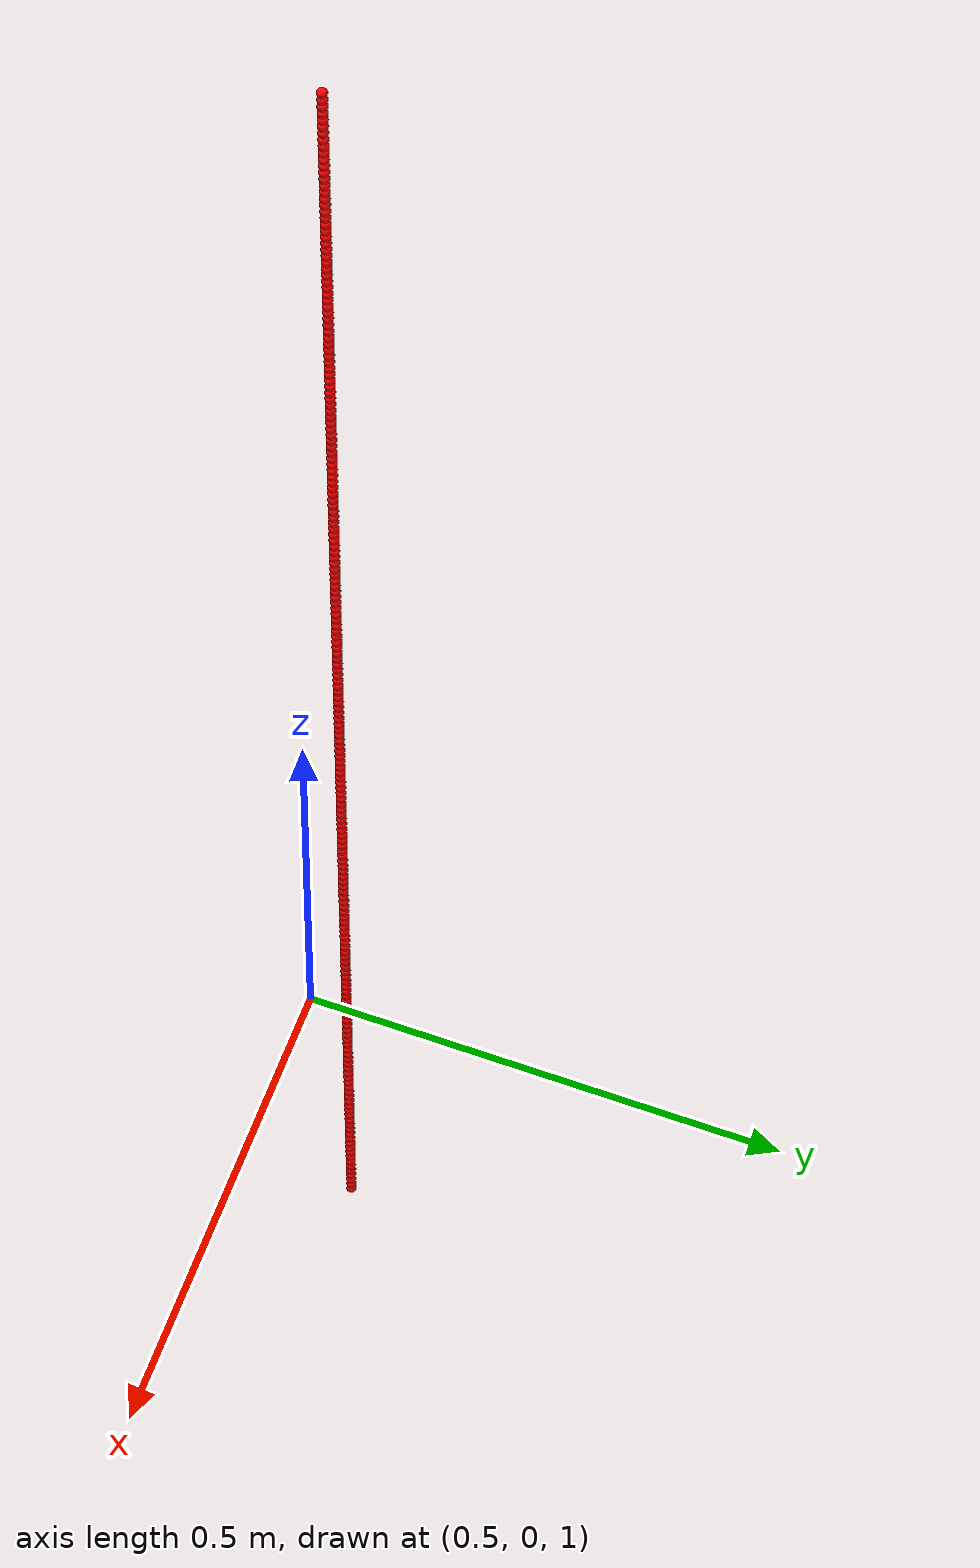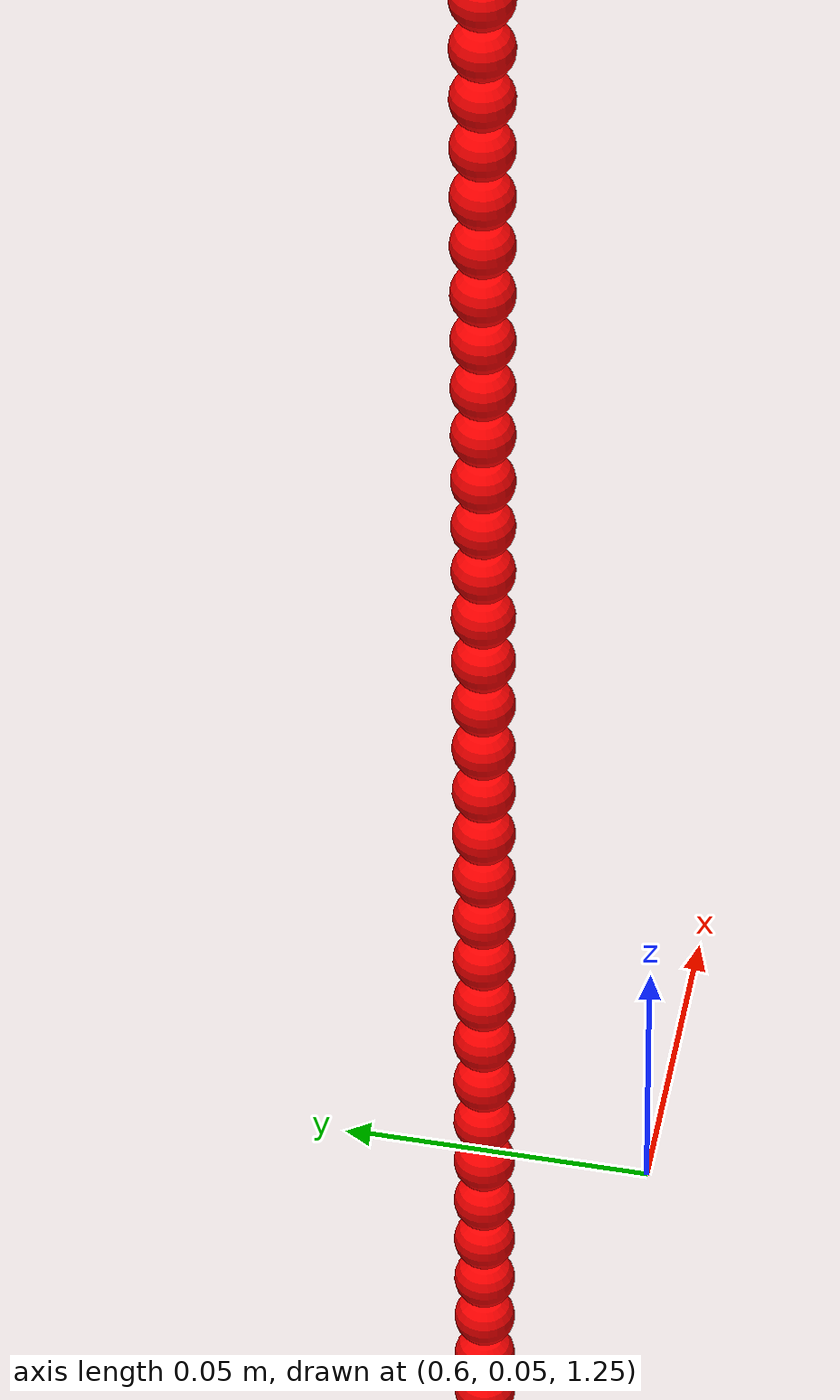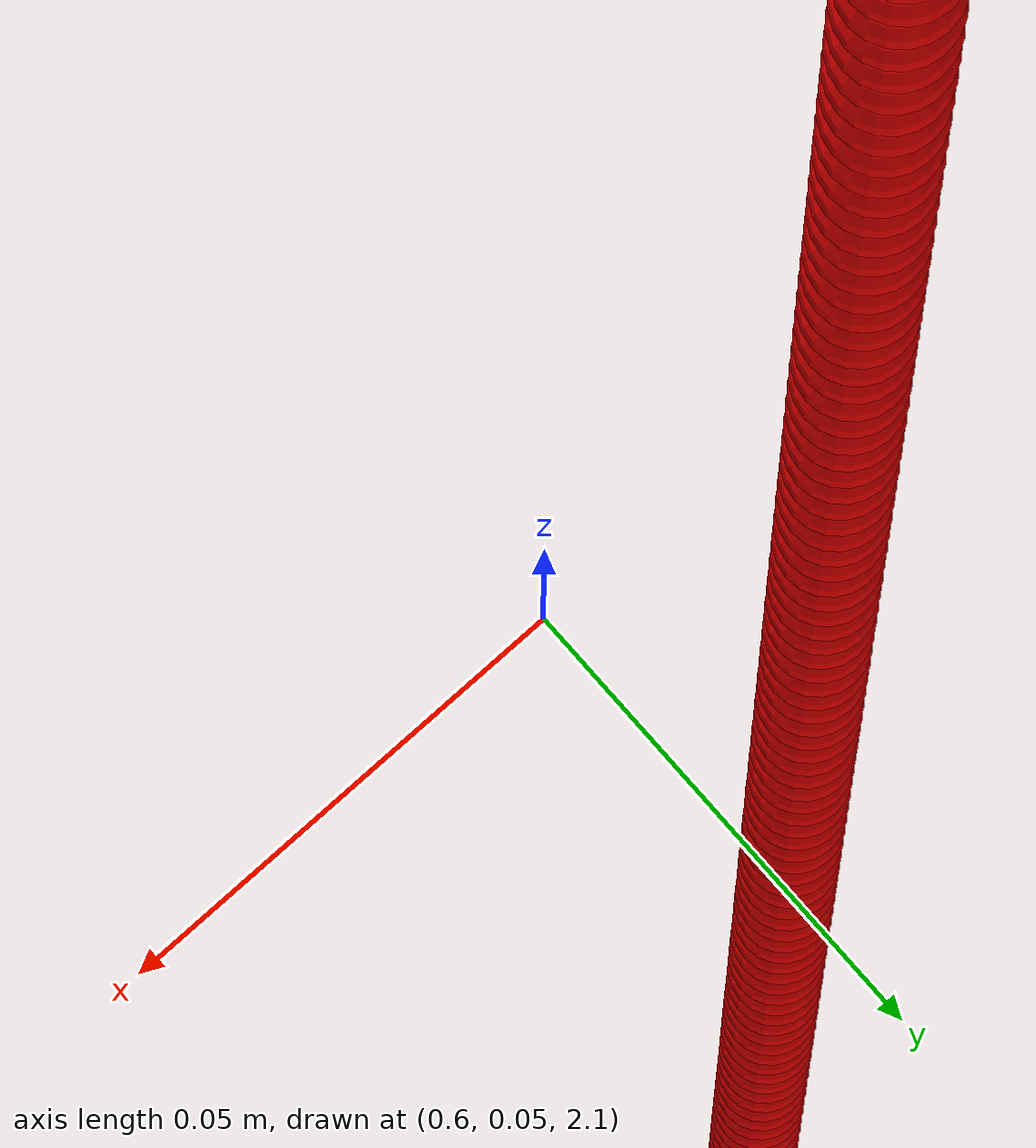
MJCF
<?xml version="1.0" ?>
<mujoco>
	<asset/>
	<worldbody>
		<body name="ball0" pos="0.59 0.075 0.8">
			<freejoint/>
			<geom type="sphere" size="0.005" rgba="1 0 0 1"/>
		</body>
		<body name="ball1" pos="0.59 0.075 0.81">
			<freejoint/>
			<geom type="sphere" size="0.005" rgba="1 0 0 1"/>
		</body>
		<body name="ball2" pos="0.59 0.075 0.8200000000000001">
			<freejoint/>
			<geom type="sphere" size="0.005" rgba="1 0 0 1"/>
		</body>
		<body name="ball3" pos="0.59 0.075 0.8300000000000001">
			<freejoint/>
			<geom type="sphere" size="0.005" rgba="1 0 0 1"/>
		</body>
		<body name="ball4" pos="0.59 0.075 0.8400000000000001">
			<freejoint/>
			<geom type="sphere" size="0.005" rgba="1 0 0 1"/>
		</body>
		<body name="ball5" pos="0.59 0.075 0.8500000000000001">
			<freejoint/>
			<geom type="sphere" size="0.005" rgba="1 0 0 1"/>
		</body>
		<body name="ball6" pos="0.59 0.075 0.8600000000000001">
			<freejoint/>
			<geom type="sphere" size="0.005" rgba="1 0 0 1"/>
		</body>
		<body name="ball7" pos="0.59 0.075 0.8700000000000001">
			<freejoint/>
			<geom type="sphere" size="0.005" rgba="1 0 0 1"/>
		</body>
		<body name="ball8" pos="0.59 0.075 0.88">
			<freejoint/>
			<geom type="sphere" size="0.005" rgba="1 0 0 1"/>
		</body>
		<body name="ball9" pos="0.59 0.075 0.89">
			<freejoint/>
			<geom type="sphere" size="0.005" rgba="1 0 0 1"/>
		</body>
		<body name="ball10" pos="0.59 0.075 0.9">
			<freejoint/>
			<geom type="sphere" size="0.005" rgba="1 0 0 1"/>
		</body>
		<body name="ball11" pos="0.59 0.075 0.91">
			<freejoint/>
			<geom type="sphere" size="0.005" rgba="1 0 0 1"/>
		</body>
		<body name="ball12" pos="0.59 0.075 0.92">
			<freejoint/>
			<geom type="sphere" size="0.005" rgba="1 0 0 1"/>
		</body>
		<body name="ball13" pos="0.59 0.075 0.93">
			<freejoint/>
			<geom type="sphere" size="0.005" rgba="1 0 0 1"/>
		</body>
		<body name="ball14" pos="0.59 0.075 0.9400000000000001">
			<freejoint/>
			<geom type="sphere" size="0.005" rgba="1 0 0 1"/>
		</body>
		<body name="ball15" pos="0.59 0.075 0.9500000000000001">
			<freejoint/>
			<geom type="sphere" size="0.005" rgba="1 0 0 1"/>
		</body>
		<body name="ball16" pos="0.59 0.075 0.9600000000000001">
			<freejoint/>
			<geom type="sphere" size="0.005" rgba="1 0 0 1"/>
		</body>
		<body name="ball17" pos="0.59 0.075 0.9700000000000001">
			<freejoint/>
			<geom type="sphere" size="0.005" rgba="1 0 0 1"/>
		</body>
		<body name="ball18" pos="0.59 0.075 0.98">
			<freejoint/>
			<geom type="sphere" size="0.005" rgba="1 0 0 1"/>
		</body>
		<body name="ball19" pos="0.59 0.075 0.99">
			<freejoint/>
			<geom type="sphere" size="0.005" rgba="1 0 0 1"/>
		</body>
		<body name="ball20" pos="0.59 0.075 1.0">
			<freejoint/>
			<geom type="sphere" size="0.005" rgba="1 0 0 1"/>
		</body>
		<body name="ball21" pos="0.59 0.075 1.01">
			<freejoint/>
			<geom type="sphere" size="0.005" rgba="1 0 0 1"/>
		</body>
		<body name="ball22" pos="0.59 0.075 1.02">
			<freejoint/>
			<geom type="sphere" size="0.005" rgba="1 0 0 1"/>
		</body>
		<body name="ball23" pos="0.59 0.075 1.03">
			<freejoint/>
			<geom type="sphere" size="0.005" rgba="1 0 0 1"/>
		</body>
		<body name="ball24" pos="0.59 0.075 1.04">
			<freejoint/>
			<geom type="sphere" size="0.005" rgba="1 0 0 1"/>
		</body>
		<body name="ball25" pos="0.59 0.075 1.05">
			<freejoint/>
			<geom type="sphere" size="0.005" rgba="1 0 0 1"/>
		</body>
		<body name="ball26" pos="0.59 0.075 1.06">
			<freejoint/>
			<geom type="sphere" size="0.005" rgba="1 0 0 1"/>
		</body>
		<body name="ball27" pos="0.59 0.075 1.07">
			<freejoint/>
			<geom type="sphere" size="0.005" rgba="1 0 0 1"/>
		</body>
		<body name="ball28" pos="0.59 0.075 1.08">
			<freejoint/>
			<geom type="sphere" size="0.005" rgba="1 0 0 1"/>
		</body>
		<body name="ball29" pos="0.59 0.075 1.09">
			<freejoint/>
			<geom type="sphere" size="0.005" rgba="1 0 0 1"/>
		</body>
		<body name="ball30" pos="0.59 0.075 1.1">
			<freejoint/>
			<geom type="sphere" size="0.005" rgba="1 0 0 1"/>
		</body>
		<body name="ball31" pos="0.59 0.075 1.11">
			<freejoint/>
			<geom type="sphere" size="0.005" rgba="1 0 0 1"/>
		</body>
		<body name="ball32" pos="0.59 0.075 1.12">
			<freejoint/>
			<geom type="sphere" size="0.005" rgba="1 0 0 1"/>
		</body>
		<body name="ball33" pos="0.59 0.075 1.1300000000000001">
			<freejoint/>
			<geom type="sphere" size="0.005" rgba="1 0 0 1"/>
		</body>
		<body name="ball34" pos="0.59 0.075 1.1400000000000001">
			<freejoint/>
			<geom type="sphere" size="0.005" rgba="1 0 0 1"/>
		</body>
		<body name="ball35" pos="0.59 0.075 1.1500000000000001">
			<freejoint/>
			<geom type="sphere" size="0.005" rgba="1 0 0 1"/>
		</body>
		<body name="ball36" pos="0.59 0.075 1.1600000000000001">
			<freejoint/>
			<geom type="sphere" size="0.005" rgba="1 0 0 1"/>
		</body>
		<body name="ball37" pos="0.59 0.075 1.17">
			<freejoint/>
			<geom type="sphere" size="0.005" rgba="1 0 0 1"/>
		</body>
		<body name="ball38" pos="0.59 0.075 1.1800000000000002">
			<freejoint/>
			<geom type="sphere" size="0.005" rgba="1 0 0 1"/>
		</body>
		<body name="ball39" pos="0.59 0.075 1.19">
			<freejoint/>
			<geom type="sphere" size="0.005" rgba="1 0 0 1"/>
		</body>
		<body name="ball40" pos="0.59 0.075 1.2000000000000002">
			<freejoint/>
			<geom type="sphere" size="0.005" rgba="1 0 0 1"/>
		</body>
		<body name="ball41" pos="0.59 0.075 1.21">
			<freejoint/>
			<geom type="sphere" size="0.005" rgba="1 0 0 1"/>
		</body>
		<body name="ball42" pos="0.59 0.075 1.22">
			<freejoint/>
			<geom type="sphere" size="0.005" rgba="1 0 0 1"/>
		</body>
		<body name="ball43" pos="0.59 0.075 1.23">
			<freejoint/>
			<geom type="sphere" size="0.005" rgba="1 0 0 1"/>
		</body>
		<body name="ball44" pos="0.59 0.075 1.24">
			<freejoint/>
			<geom type="sphere" size="0.005" rgba="1 0 0 1"/>
		</body>
		<body name="ball45" pos="0.59 0.075 1.25">
			<freejoint/>
			<geom type="sphere" size="0.005" rgba="1 0 0 1"/>
		</body>
		<body name="ball46" pos="0.59 0.075 1.26">
			<freejoint/>
			<geom type="sphere" size="0.005" rgba="1 0 0 1"/>
		</body>
		<body name="ball47" pos="0.59 0.075 1.27">
			<freejoint/>
			<geom type="sphere" size="0.005" rgba="1 0 0 1"/>
		</body>
		<body name="ball48" pos="0.59 0.075 1.28">
			<freejoint/>
			<geom type="sphere" size="0.005" rgba="1 0 0 1"/>
		</body>
		<body name="ball49" pos="0.59 0.075 1.29">
			<freejoint/>
			<geom type="sphere" size="0.005" rgba="1 0 0 1"/>
		</body>
		<body name="ball50" pos="0.59 0.075 1.3">
			<freejoint/>
			<geom type="sphere" size="0.005" rgba="1 0 0 1"/>
		</body>
		<body name="ball51" pos="0.59 0.075 1.31">
			<freejoint/>
			<geom type="sphere" size="0.005" rgba="1 0 0 1"/>
		</body>
		<body name="ball52" pos="0.59 0.075 1.32">
			<freejoint/>
			<geom type="sphere" size="0.005" rgba="1 0 0 1"/>
		</body>
		<body name="ball53" pos="0.59 0.075 1.33">
			<freejoint/>
			<geom type="sphere" size="0.005" rgba="1 0 0 1"/>
		</body>
		<body name="ball54" pos="0.59 0.075 1.34">
			<freejoint/>
			<geom type="sphere" size="0.005" rgba="1 0 0 1"/>
		</body>
		<body name="ball55" pos="0.59 0.075 1.35">
			<freejoint/>
			<geom type="sphere" size="0.005" rgba="1 0 0 1"/>
		</body>
		<body name="ball56" pos="0.59 0.075 1.36">
			<freejoint/>
			<geom type="sphere" size="0.005" rgba="1 0 0 1"/>
		</body>
		<body name="ball57" pos="0.59 0.075 1.37">
			<freejoint/>
			<geom type="sphere" size="0.005" rgba="1 0 0 1"/>
		</body>
		<body name="ball58" pos="0.59 0.075 1.38">
			<freejoint/>
			<geom type="sphere" size="0.005" rgba="1 0 0 1"/>
		</body>
		<body name="ball59" pos="0.59 0.075 1.3900000000000001">
			<freejoint/>
			<geom type="sphere" size="0.005" rgba="1 0 0 1"/>
		</body>
		<body name="ball60" pos="0.59 0.075 1.4">
			<freejoint/>
			<geom type="sphere" size="0.005" rgba="1 0 0 1"/>
		</body>
		<body name="ball61" pos="0.59 0.075 1.4100000000000001">
			<freejoint/>
			<geom type="sphere" size="0.005" rgba="1 0 0 1"/>
		</body>
		<body name="ball62" pos="0.59 0.075 1.42">
			<freejoint/>
			<geom type="sphere" size="0.005" rgba="1 0 0 1"/>
		</body>
		<body name="ball63" pos="0.59 0.075 1.4300000000000002">
			<freejoint/>
			<geom type="sphere" size="0.005" rgba="1 0 0 1"/>
		</body>
		<body name="ball64" pos="0.59 0.075 1.44">
			<freejoint/>
			<geom type="sphere" size="0.005" rgba="1 0 0 1"/>
		</body>
		<body name="ball65" pos="0.59 0.075 1.4500000000000002">
			<freejoint/>
			<geom type="sphere" size="0.005" rgba="1 0 0 1"/>
		</body>
		<body name="ball66" pos="0.59 0.075 1.46">
			<freejoint/>
			<geom type="sphere" size="0.005" rgba="1 0 0 1"/>
		</body>
		<body name="ball67" pos="0.59 0.075 1.4700000000000002">
			<freejoint/>
			<geom type="sphere" size="0.005" rgba="1 0 0 1"/>
		</body>
		<body name="ball68" pos="0.59 0.075 1.48">
			<freejoint/>
			<geom type="sphere" size="0.005" rgba="1 0 0 1"/>
		</body>
		<body name="ball69" pos="0.59 0.075 1.4900000000000002">
			<freejoint/>
			<geom type="sphere" size="0.005" rgba="1 0 0 1"/>
		</body>
		<body name="ball70" pos="0.59 0.075 1.5">
			<freejoint/>
			<geom type="sphere" size="0.005" rgba="1 0 0 1"/>
		</body>
		<body name="ball71" pos="0.59 0.075 1.51">
			<freejoint/>
			<geom type="sphere" size="0.005" rgba="1 0 0 1"/>
		</body>
		<body name="ball72" pos="0.59 0.075 1.52">
			<freejoint/>
			<geom type="sphere" size="0.005" rgba="1 0 0 1"/>
		</body>
		<body name="ball73" pos="0.59 0.075 1.53">
			<freejoint/>
			<geom type="sphere" size="0.005" rgba="1 0 0 1"/>
		</body>
		<body name="ball74" pos="0.59 0.075 1.54">
			<freejoint/>
			<geom type="sphere" size="0.005" rgba="1 0 0 1"/>
		</body>
		<body name="ball75" pos="0.59 0.075 1.55">
			<freejoint/>
			<geom type="sphere" size="0.005" rgba="1 0 0 1"/>
		</body>
		<body name="ball76" pos="0.59 0.075 1.56">
			<freejoint/>
			<geom type="sphere" size="0.005" rgba="1 0 0 1"/>
		</body>
		<body name="ball77" pos="0.59 0.075 1.57">
			<freejoint/>
			<geom type="sphere" size="0.005" rgba="1 0 0 1"/>
		</body>
		<body name="ball78" pos="0.59 0.075 1.58">
			<freejoint/>
			<geom type="sphere" size="0.005" rgba="1 0 0 1"/>
		</body>
		<body name="ball79" pos="0.59 0.075 1.59">
			<freejoint/>
			<geom type="sphere" size="0.005" rgba="1 0 0 1"/>
		</body>
		<body name="ball80" pos="0.59 0.075 1.6">
			<freejoint/>
			<geom type="sphere" size="0.005" rgba="1 0 0 1"/>
		</body>
		<body name="ball81" pos="0.59 0.075 1.61">
			<freejoint/>
			<geom type="sphere" size="0.005" rgba="1 0 0 1"/>
		</body>
		<body name="ball82" pos="0.59 0.075 1.62">
			<freejoint/>
			<geom type="sphere" size="0.005" rgba="1 0 0 1"/>
		</body>
		<body name="ball83" pos="0.59 0.075 1.6300000000000001">
			<freejoint/>
			<geom type="sphere" size="0.005" rgba="1 0 0 1"/>
		</body>
		<body name="ball84" pos="0.59 0.075 1.6400000000000001">
			<freejoint/>
			<geom type="sphere" size="0.005" rgba="1 0 0 1"/>
		</body>
		<body name="ball85" pos="0.59 0.075 1.65">
			<freejoint/>
			<geom type="sphere" size="0.005" rgba="1 0 0 1"/>
		</body>
		<body name="ball86" pos="0.59 0.075 1.6600000000000001">
			<freejoint/>
			<geom type="sphere" size="0.005" rgba="1 0 0 1"/>
		</body>
		<body name="ball87" pos="0.59 0.075 1.67">
			<freejoint/>
			<geom type="sphere" size="0.005" rgba="1 0 0 1"/>
		</body>
		<body name="ball88" pos="0.59 0.075 1.6800000000000002">
			<freejoint/>
			<geom type="sphere" size="0.005" rgba="1 0 0 1"/>
		</body>
		<body name="ball89" pos="0.59 0.075 1.69">
			<freejoint/>
			<geom type="sphere" size="0.005" rgba="1 0 0 1"/>
		</body>
		<body name="ball90" pos="0.59 0.075 1.7000000000000002">
			<freejoint/>
			<geom type="sphere" size="0.005" rgba="1 0 0 1"/>
		</body>
		<body name="ball91" pos="0.59 0.075 1.71">
			<freejoint/>
			<geom type="sphere" size="0.005" rgba="1 0 0 1"/>
		</body>
		<body name="ball92" pos="0.59 0.075 1.7200000000000002">
			<freejoint/>
			<geom type="sphere" size="0.005" rgba="1 0 0 1"/>
		</body>
		<body name="ball93" pos="0.59 0.075 1.73">
			<freejoint/>
			<geom type="sphere" size="0.005" rgba="1 0 0 1"/>
		</body>
		<body name="ball94" pos="0.59 0.075 1.7400000000000002">
			<freejoint/>
			<geom type="sphere" size="0.005" rgba="1 0 0 1"/>
		</body>
		<body name="ball95" pos="0.59 0.075 1.75">
			<freejoint/>
			<geom type="sphere" size="0.005" rgba="1 0 0 1"/>
		</body>
		<body name="ball96" pos="0.59 0.075 1.76">
			<freejoint/>
			<geom type="sphere" size="0.005" rgba="1 0 0 1"/>
		</body>
		<body name="ball97" pos="0.59 0.075 1.77">
			<freejoint/>
			<geom type="sphere" size="0.005" rgba="1 0 0 1"/>
		</body>
		<body name="ball98" pos="0.59 0.075 1.78">
			<freejoint/>
			<geom type="sphere" size="0.005" rgba="1 0 0 1"/>
		</body>
		<body name="ball99" pos="0.59 0.075 1.79">
			<freejoint/>
			<geom type="sphere" size="0.005" rgba="1 0 0 1"/>
		</body>
		<body name="ball100" pos="0.59 0.075 1.8">
			<freejoint/>
			<geom type="sphere" size="0.005" rgba="1 0 0 1"/>
		</body>
		<body name="ball101" pos="0.59 0.075 1.81">
			<freejoint/>
			<geom type="sphere" size="0.005" rgba="1 0 0 1"/>
		</body>
		<body name="ball102" pos="0.59 0.075 1.82">
			<freejoint/>
			<geom type="sphere" size="0.005" rgba="1 0 0 1"/>
		</body>
		<body name="ball103" pos="0.59 0.075 1.83">
			<freejoint/>
			<geom type="sphere" size="0.005" rgba="1 0 0 1"/>
		</body>
		<body name="ball104" pos="0.59 0.075 1.84">
			<freejoint/>
			<geom type="sphere" size="0.005" rgba="1 0 0 1"/>
		</body>
		<body name="ball105" pos="0.59 0.075 1.85">
			<freejoint/>
			<geom type="sphere" size="0.005" rgba="1 0 0 1"/>
		</body>
		<body name="ball106" pos="0.59 0.075 1.86">
			<freejoint/>
			<geom type="sphere" size="0.005" rgba="1 0 0 1"/>
		</body>
		<body name="ball107" pos="0.59 0.075 1.87">
			<freejoint/>
			<geom type="sphere" size="0.005" rgba="1 0 0 1"/>
		</body>
		<body name="ball108" pos="0.59 0.075 1.8800000000000001">
			<freejoint/>
			<geom type="sphere" size="0.005" rgba="1 0 0 1"/>
		</body>
		<body name="ball109" pos="0.59 0.075 1.8900000000000001">
			<freejoint/>
			<geom type="sphere" size="0.005" rgba="1 0 0 1"/>
		</body>
		<body name="ball110" pos="0.59 0.075 1.9000000000000001">
			<freejoint/>
			<geom type="sphere" size="0.005" rgba="1 0 0 1"/>
		</body>
		<body name="ball111" pos="0.59 0.075 1.9100000000000001">
			<freejoint/>
			<geom type="sphere" size="0.005" rgba="1 0 0 1"/>
		</body>
		<body name="ball112" pos="0.59 0.075 1.9200000000000002">
			<freejoint/>
			<geom type="sphere" size="0.005" rgba="1 0 0 1"/>
		</body>
		<body name="ball113" pos="0.59 0.075 1.9300000000000002">
			<freejoint/>
			<geom type="sphere" size="0.005" rgba="1 0 0 1"/>
		</body>
		<body name="ball114" pos="0.59 0.075 1.9400000000000002">
			<freejoint/>
			<geom type="sphere" size="0.005" rgba="1 0 0 1"/>
		</body>
		<body name="ball115" pos="0.59 0.075 1.9500000000000002">
			<freejoint/>
			<geom type="sphere" size="0.005" rgba="1 0 0 1"/>
		</body>
		<body name="ball116" pos="0.59 0.075 1.96">
			<freejoint/>
			<geom type="sphere" size="0.005" rgba="1 0 0 1"/>
		</body>
		<body name="ball117" pos="0.59 0.075 1.97">
			<freejoint/>
			<geom type="sphere" size="0.005" rgba="1 0 0 1"/>
		</body>
		<body name="ball118" pos="0.59 0.075 1.98">
			<freejoint/>
			<geom type="sphere" size="0.005" rgba="1 0 0 1"/>
		</body>
		<body name="ball119" pos="0.59 0.075 1.99">
			<freejoint/>
			<geom type="sphere" size="0.005" rgba="1 0 0 1"/>
		</body>
		<body name="ball120" pos="0.59 0.075 2.0">
			<freejoint/>
			<geom type="sphere" size="0.005" rgba="1 0 0 1"/>
		</body>
		<body name="ball121" pos="0.59 0.075 2.01">
			<freejoint/>
			<geom type="sphere" size="0.005" rgba="1 0 0 1"/>
		</body>
		<body name="ball122" pos="0.59 0.075 2.02">
			<freejoint/>
			<geom type="sphere" size="0.005" rgba="1 0 0 1"/>
		</body>
		<body name="ball123" pos="0.59 0.075 2.0300000000000002">
			<freejoint/>
			<geom type="sphere" size="0.005" rgba="1 0 0 1"/>
		</body>
		<body name="ball124" pos="0.59 0.075 2.04">
			<freejoint/>
			<geom type="sphere" size="0.005" rgba="1 0 0 1"/>
		</body>
		<body name="ball125" pos="0.59 0.075 2.05">
			<freejoint/>
			<geom type="sphere" size="0.005" rgba="1 0 0 1"/>
		</body>
		<body name="ball126" pos="0.59 0.075 2.06">
			<freejoint/>
			<geom type="sphere" size="0.005" rgba="1 0 0 1"/>
		</body>
		<body name="ball127" pos="0.59 0.075 2.0700000000000003">
			<freejoint/>
			<geom type="sphere" size="0.005" rgba="1 0 0 1"/>
		</body>
		<body name="ball128" pos="0.59 0.075 2.08">
			<freejoint/>
			<geom type="sphere" size="0.005" rgba="1 0 0 1"/>
		</body>
		<body name="ball129" pos="0.59 0.075 2.09">
			<freejoint/>
			<geom type="sphere" size="0.005" rgba="1 0 0 1"/>
		</body>
		<body name="ball130" pos="0.59 0.075 2.1">
			<freejoint/>
			<geom type="sphere" size="0.005" rgba="1 0 0 1"/>
		</body>
		<body name="ball131" pos="0.59 0.075 2.1100000000000003">
			<freejoint/>
			<geom type="sphere" size="0.005" rgba="1 0 0 1"/>
		</body>
		<body name="ball132" pos="0.59 0.075 2.12">
			<freejoint/>
			<geom type="sphere" size="0.005" rgba="1 0 0 1"/>
		</body>
		<body name="ball133" pos="0.59 0.075 2.13">
			<freejoint/>
			<geom type="sphere" size="0.005" rgba="1 0 0 1"/>
		</body>
		<body name="ball134" pos="0.59 0.075 2.14">
			<freejoint/>
			<geom type="sphere" size="0.005" rgba="1 0 0 1"/>
		</body>
		<body name="ball135" pos="0.59 0.075 2.1500000000000004">
			<freejoint/>
			<geom type="sphere" size="0.005" rgba="1 0 0 1"/>
		</body>
		<body name="ball136" pos="0.59 0.075 2.16">
			<freejoint/>
			<geom type="sphere" size="0.005" rgba="1 0 0 1"/>
		</body>
		<body name="ball137" pos="0.59 0.075 2.17">
			<freejoint/>
			<geom type="sphere" size="0.005" rgba="1 0 0 1"/>
		</body>
		<body name="ball138" pos="0.59 0.075 2.18">
			<freejoint/>
			<geom type="sphere" size="0.005" rgba="1 0 0 1"/>
		</body>
		<body name="ball139" pos="0.59 0.075 2.1900000000000004">
			<freejoint/>
			<geom type="sphere" size="0.005" rgba="1 0 0 1"/>
		</body>
		<body name="ball140" pos="0.59 0.075 2.2">
			<freejoint/>
			<geom type="sphere" size="0.005" rgba="1 0 0 1"/>
		</body>
		<body name="ball141" pos="0.59 0.075 2.21">
			<freejoint/>
			<geom type="sphere" size="0.005" rgba="1 0 0 1"/>
		</body>
		<body name="ball142" pos="0.59 0.075 2.2199999999999998">
			<freejoint/>
			<geom type="sphere" size="0.005" rgba="1 0 0 1"/>
		</body>
		<body name="ball143" pos="0.59 0.075 2.23">
			<freejoint/>
			<geom type="sphere" size="0.005" rgba="1 0 0 1"/>
		</body>
		<body name="ball144" pos="0.59 0.075 2.24">
			<freejoint/>
			<geom type="sphere" size="0.005" rgba="1 0 0 1"/>
		</body>
		<body name="ball145" pos="0.59 0.075 2.25">
			<freejoint/>
			<geom type="sphere" size="0.005" rgba="1 0 0 1"/>
		</body>
		<body name="ball146" pos="0.59 0.075 2.26">
			<freejoint/>
			<geom type="sphere" size="0.005" rgba="1 0 0 1"/>
		</body>
		<body name="ball147" pos="0.59 0.075 2.27">
			<freejoint/>
			<geom type="sphere" size="0.005" rgba="1 0 0 1"/>
		</body>
		<body name="ball148" pos="0.59 0.075 2.2800000000000002">
			<freejoint/>
			<geom type="sphere" size="0.005" rgba="1 0 0 1"/>
		</body>
		<body name="ball149" pos="0.59 0.075 2.29">
			<freejoint/>
			<geom type="sphere" size="0.005" rgba="1 0 0 1"/>
		</body>
		<body name="ball150" pos="0.59 0.075 2.3">
			<freejoint/>
			<geom type="sphere" size="0.005" rgba="1 0 0 1"/>
		</body>
		<body name="ball151" pos="0.59 0.075 2.31">
			<freejoint/>
			<geom type="sphere" size="0.005" rgba="1 0 0 1"/>
		</body>
		<body name="ball152" pos="0.59 0.075 2.3200000000000003">
			<freejoint/>
			<geom type="sphere" size="0.005" rgba="1 0 0 1"/>
		</body>
		<body name="ball153" pos="0.59 0.075 2.33">
			<freejoint/>
			<geom type="sphere" size="0.005" rgba="1 0 0 1"/>
		</body>
		<body name="ball154" pos="0.59 0.075 2.34">
			<freejoint/>
			<geom type="sphere" size="0.005" rgba="1 0 0 1"/>
		</body>
		<body name="ball155" pos="0.59 0.075 2.35">
			<freejoint/>
			<geom type="sphere" size="0.005" rgba="1 0 0 1"/>
		</body>
		<body name="ball156" pos="0.59 0.075 2.3600000000000003">
			<freejoint/>
			<geom type="sphere" size="0.005" rgba="1 0 0 1"/>
		</body>
		<body name="ball157" pos="0.59 0.075 2.37">
			<freejoint/>
			<geom type="sphere" size="0.005" rgba="1 0 0 1"/>
		</body>
		<body name="ball158" pos="0.59 0.075 2.38">
			<freejoint/>
			<geom type="sphere" size="0.005" rgba="1 0 0 1"/>
		</body>
		<body name="ball159" pos="0.59 0.075 2.39">
			<freejoint/>
			<geom type="sphere" size="0.005" rgba="1 0 0 1"/>
		</body>
		<body name="ball160" pos="0.59 0.075 2.4000000000000004">
			<freejoint/>
			<geom type="sphere" size="0.005" rgba="1 0 0 1"/>
		</body>
		<body name="ball161" pos="0.59 0.075 2.41">
			<freejoint/>
			<geom type="sphere" size="0.005" rgba="1 0 0 1"/>
		</body>
		<body name="ball162" pos="0.59 0.075 2.42">
			<freejoint/>
			<geom type="sphere" size="0.005" rgba="1 0 0 1"/>
		</body>
		<body name="ball163" pos="0.59 0.075 2.43">
			<freejoint/>
			<geom type="sphere" size="0.005" rgba="1 0 0 1"/>
		</body>
		<body name="ball164" pos="0.59 0.075 2.4400000000000004">
			<freejoint/>
			<geom type="sphere" size="0.005" rgba="1 0 0 1"/>
		</body>
		<body name="ball165" pos="0.59 0.075 2.45">
			<freejoint/>
			<geom type="sphere" size="0.005" rgba="1 0 0 1"/>
		</body>
		<body name="ball166" pos="0.59 0.075 2.46">
			<freejoint/>
			<geom type="sphere" size="0.005" rgba="1 0 0 1"/>
		</body>
		<body name="ball167" pos="0.59 0.075 2.4699999999999998">
			<freejoint/>
			<geom type="sphere" size="0.005" rgba="1 0 0 1"/>
		</body>
		<body name="ball168" pos="0.59 0.075 2.48">
			<freejoint/>
			<geom type="sphere" size="0.005" rgba="1 0 0 1"/>
		</body>
		<body name="ball169" pos="0.59 0.075 2.49">
			<freejoint/>
			<geom type="sphere" size="0.005" rgba="1 0 0 1"/>
		</body>
		<body name="ball170" pos="0.59 0.075 2.5">
			<freejoint/>
			<geom type="sphere" size="0.005" rgba="1 0 0 1"/>
		</body>
		<body name="ball171" pos="0.59 0.075 2.51">
			<freejoint/>
			<geom type="sphere" size="0.005" rgba="1 0 0 1"/>
		</body>
		<body name="ball172" pos="0.59 0.075 2.52">
			<freejoint/>
			<geom type="sphere" size="0.005" rgba="1 0 0 1"/>
		</body>
		<body name="ball173" pos="0.59 0.075 2.5300000000000002">
			<freejoint/>
			<geom type="sphere" size="0.005" rgba="1 0 0 1"/>
		</body>
		<body name="ball174" pos="0.59 0.075 2.54">
			<freejoint/>
			<geom type="sphere" size="0.005" rgba="1 0 0 1"/>
		</body>
		<body name="ball175" pos="0.59 0.075 2.55">
			<freejoint/>
			<geom type="sphere" size="0.005" rgba="1 0 0 1"/>
		</body>
		<body name="ball176" pos="0.59 0.075 2.56">
			<freejoint/>
			<geom type="sphere" size="0.005" rgba="1 0 0 1"/>
		</body>
		<body name="ball177" pos="0.59 0.075 2.5700000000000003">
			<freejoint/>
			<geom type="sphere" size="0.005" rgba="1 0 0 1"/>
		</body>
		<body name="ball178" pos="0.59 0.075 2.58">
			<freejoint/>
			<geom type="sphere" size="0.005" rgba="1 0 0 1"/>
		</body>
		<body name="ball179" pos="0.59 0.075 2.59">
			<freejoint/>
			<geom type="sphere" size="0.005" rgba="1 0 0 1"/>
		</body>
		<body name="ball180" pos="0.59 0.075 2.6">
			<freejoint/>
			<geom type="sphere" size="0.005" rgba="1 0 0 1"/>
		</body>
		<body name="ball181" pos="0.59 0.075 2.6100000000000003">
			<freejoint/>
			<geom type="sphere" size="0.005" rgba="1 0 0 1"/>
		</body>
		<body name="ball182" pos="0.59 0.075 2.62">
			<freejoint/>
			<geom type="sphere" size="0.005" rgba="1 0 0 1"/>
		</body>
		<body name="ball183" pos="0.59 0.075 2.63">
			<freejoint/>
			<geom type="sphere" size="0.005" rgba="1 0 0 1"/>
		</body>
		<body name="ball184" pos="0.59 0.075 2.64">
			<freejoint/>
			<geom type="sphere" size="0.005" rgba="1 0 0 1"/>
		</body>
		<body name="ball185" pos="0.59 0.075 2.6500000000000004">
			<freejoint/>
			<geom type="sphere" size="0.005" rgba="1 0 0 1"/>
		</body>
		<body name="ball186" pos="0.59 0.075 2.66">
			<freejoint/>
			<geom type="sphere" size="0.005" rgba="1 0 0 1"/>
		</body>
		<body name="ball187" pos="0.59 0.075 2.67">
			<freejoint/>
			<geom type="sphere" size="0.005" rgba="1 0 0 1"/>
		</body>
		<body name="ball188" pos="0.59 0.075 2.68">
			<freejoint/>
			<geom type="sphere" size="0.005" rgba="1 0 0 1"/>
		</body>
		<body name="ball189" pos="0.59 0.075 2.6900000000000004">
			<freejoint/>
			<geom type="sphere" size="0.005" rgba="1 0 0 1"/>
		</body>
		<body name="ball190" pos="0.59 0.075 2.7">
			<freejoint/>
			<geom type="sphere" size="0.005" rgba="1 0 0 1"/>
		</body>
		<body name="ball191" pos="0.59 0.075 2.71">
			<freejoint/>
			<geom type="sphere" size="0.005" rgba="1 0 0 1"/>
		</body>
		<body name="ball192" pos="0.59 0.075 2.7199999999999998">
			<freejoint/>
			<geom type="sphere" size="0.005" rgba="1 0 0 1"/>
		</body>
		<body name="ball193" pos="0.59 0.075 2.73">
			<freejoint/>
			<geom type="sphere" size="0.005" rgba="1 0 0 1"/>
		</body>
		<body name="ball194" pos="0.59 0.075 2.74">
			<freejoint/>
			<geom type="sphere" size="0.005" rgba="1 0 0 1"/>
		</body>
		<body name="ball195" pos="0.59 0.075 2.75">
			<freejoint/>
			<geom type="sphere" size="0.005" rgba="1 0 0 1"/>
		</body>
		<body name="ball196" pos="0.59 0.075 2.76">
			<freejoint/>
			<geom type="sphere" size="0.005" rgba="1 0 0 1"/>
		</body>
		<body name="ball197" pos="0.59 0.075 2.77">
			<freejoint/>
			<geom type="sphere" size="0.005" rgba="1 0 0 1"/>
		</body>
		<body name="ball198" pos="0.59 0.075 2.7800000000000002">
			<freejoint/>
			<geom type="sphere" size="0.005" rgba="1 0 0 1"/>
		</body>
		<body name="ball199" pos="0.59 0.075 2.79">
			<freejoint/>
			<geom type="sphere" size="0.005" rgba="1 0 0 1"/>
		</body>
	</worldbody>
</mujoco>
